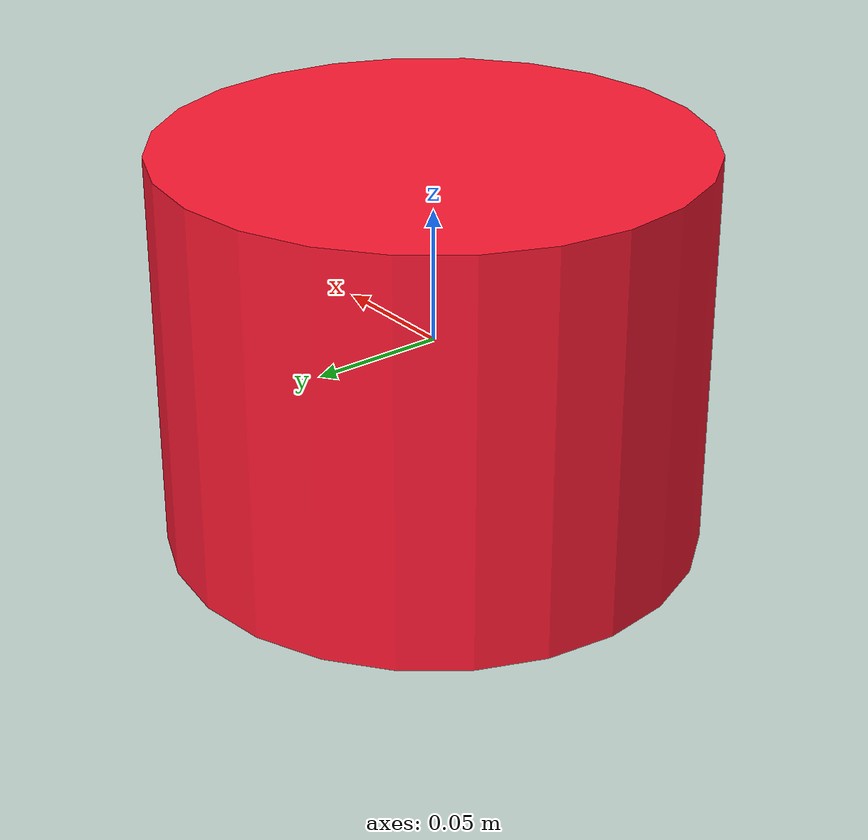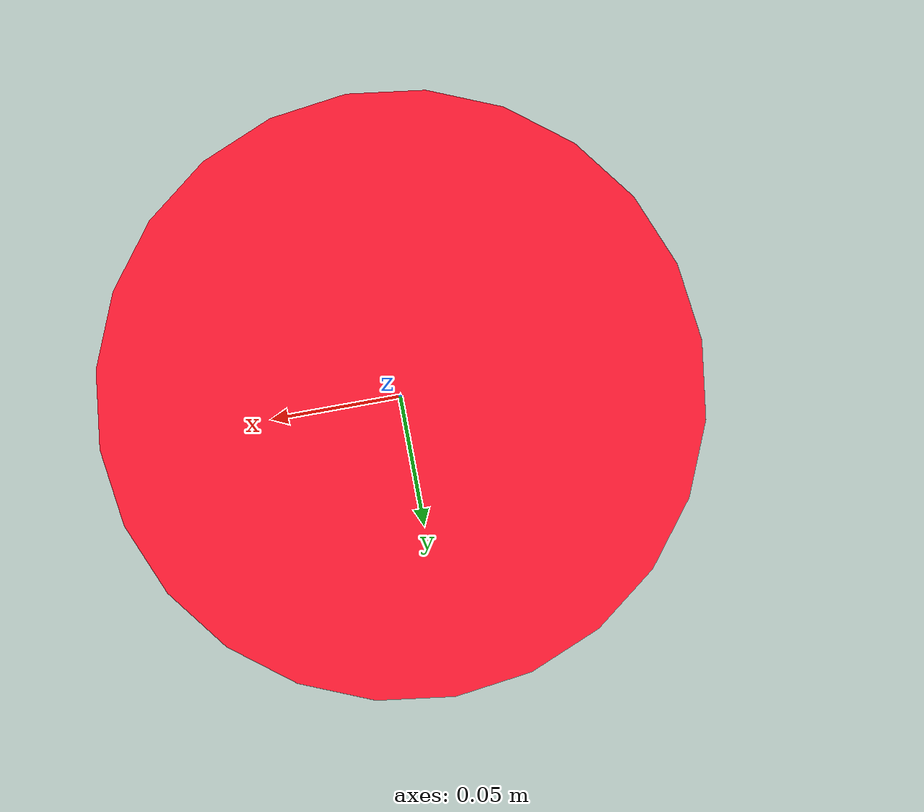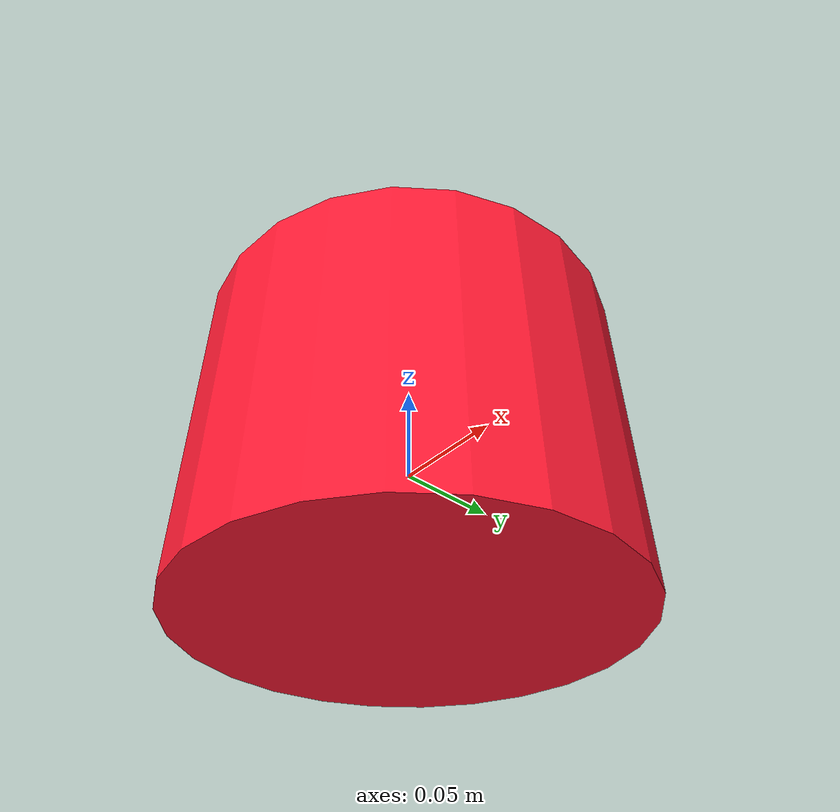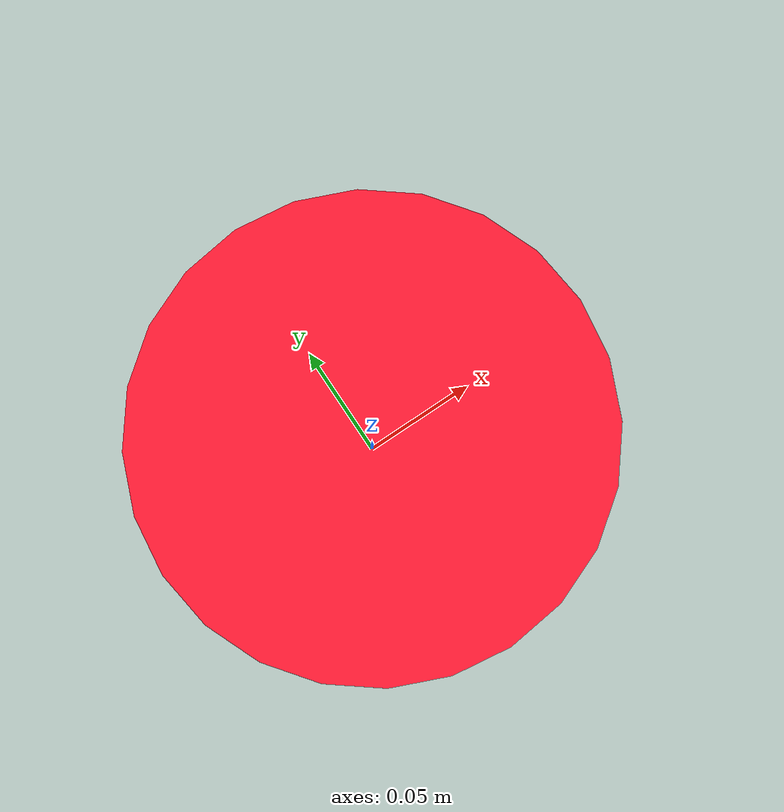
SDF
<?xml version="1.0"?>
<sdf version="1.5">
	<model name="probe">
      <link name='base_link'>
        <inertial>
          <mass>0.10</mass>
          <inertia>
		<ixx>0.004375</ixx>
            <ixy>0</ixy>
            <ixz>0</ixz>
            <iyy>0.004375</iyy>
            <iyz>0</iyz>
            <izz>0.005</izz>
          </inertia>
        </inertial>
        <self_collide>0</self_collide>
        <kinematic>0</kinematic>
        <velocity_decay/>
        <gravity>1</gravity>
        <visual name='visual'>
          <geometry>
           <cylinder>
            <radius>0.1</radius>
            <length> 0.15</length>
          </cylinder>
          </geometry>
          <material>
            <ambient>0.1 0.1 0.1 1</ambient>
            <diffuse>1 0.1 0.2 1</diffuse>
            <specular>0 0 0 0</specular>
            <emissive>0 0 0 1</emissive>
          </material>
        </visual>
        <collision name='base_link_inertia_collision'>

          <geometry>
           <cylinder>
            <radius>0.1</radius>
            <length> 0.15</length>
          </cylinder>
          </geometry>
         <max_contacts>10</max_contacts>
          <surface>
            <contact>
		<collide_bitmask>0x01</collide_bitmask>
              <ode/>
            </contact>
            <bounce/>
            <friction>
              <torsional>
                <ode/>
              </torsional>
              <ode/>
            </friction>
          </surface>
        </collision>
      </link>
      <pose frame=''>0 0 0 0 0 0</pose>
	<plugin name="parachute_plugin" filename="libtest_parachute.so">
		<robotNamespace/>
		<parachuteTriggerTopic>sample_probe</parachuteTriggerTopic>
	</plugin>
    </model>

</sdf>
